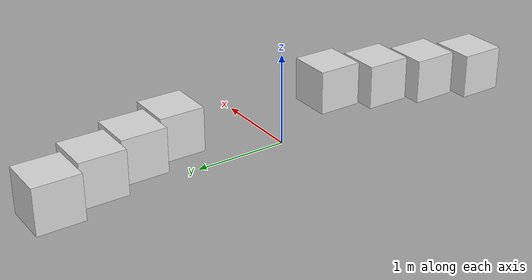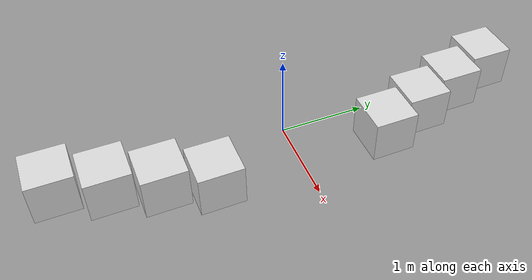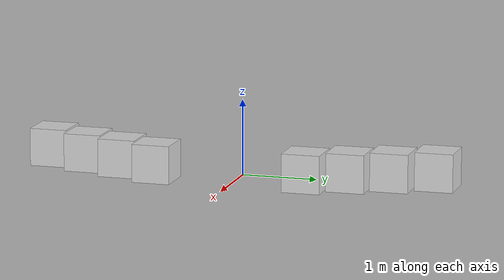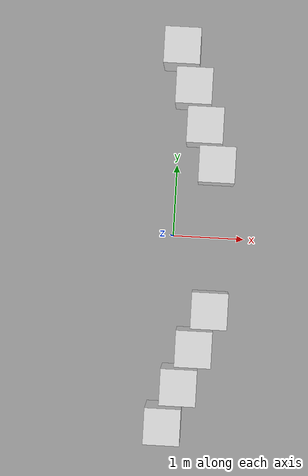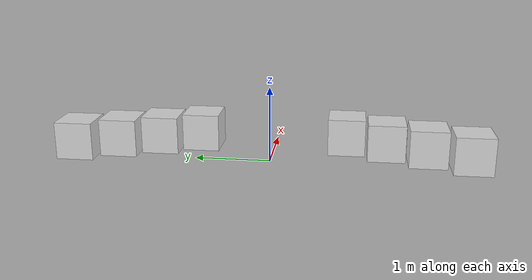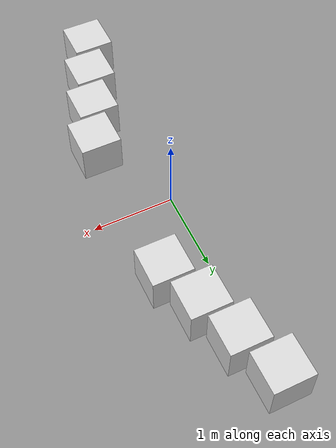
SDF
<?xml version="1.0" ?>
<sdf version="1.6">
  <model name="trap_gate">
    <static>true</static>

    <include>
      <name>normal_cue_0</name>
      <uri>model://vis_cue_normal</uri>
      <pose>0 -2.6 0.25 0 0 0</pose>
    </include>
    <include>
      <name>normal_cue_1</name>
      <uri>model://vis_cue_normal</uri>
      <pose>0.19 -2.06 0.25 0 0 0</pose>
    </include>
    <include>
      <name>normal_cue_2</name>
      <uri>model://vis_cue_normal</uri>
      <pose>0.37 -1.53 0.25 0 0 0</pose>
    </include>
    <include>
      <name>normal_cue_3</name>
      <uri>model://vis_cue_normal</uri>
      <pose>0.56 -1 0.25 0 0 0</pose>
    </include>
    <include>
      <name>normal_cue_4</name>
      <uri>model://vis_cue_normal</uri>
      <pose>0.56 1 0.25 0 0 0</pose>
    </include>
    <include>
      <name>normal_cue_5</name>
      <uri>model://vis_cue_normal</uri>
      <pose>0.37 1.53 0.25 0 0 0</pose>
    </include>
    <include>
      <name>normal_cue_6</name>
      <uri>model://vis_cue_normal</uri>
      <pose>0.19 2.06 0.25 0 0 0</pose>
    </include>
    <include>
      <name>normal_cue_7</name>
      <uri>model://vis_cue_normal</uri>
      <pose>0 2.6 0.25 0 0 0</pose>
    </include>

  </model>
</sdf>

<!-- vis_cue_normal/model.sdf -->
<sdf version="1.6">
  <model name="vis_cue_normal">
    <static>false</static>
    <pose>0 0 0.25 0 0 0</pose>
    <link name='vis_cue_normal'>
      <inertial>
        <mass>1</mass>
        <inertia>
          <ixx>0.166667</ixx>
          <ixy>0</ixy>
          <ixz>0</ixz>
          <iyy>0.166667</iyy>
          <iyz>0</iyz>
          <izz>0.166667</izz>
        </inertia>
      </inertial>
      <collision name='collision'>
        <geometry>
          <box>
            <size>0.5 0.5 0.5</size>
          </box>
        </geometry>
        <max_contacts>10</max_contacts>
        <surface>
          <contact>
            <ode/>
          </contact>
          <bounce/>
          <friction>
            <torsional>
              <ode/>
            </torsional>
            <ode/>
          </friction>
        </surface>
      </collision>
      <visual name='box_visual'>
        <geometry>
          <box>
            <size>0.5 0.5 0.5</size>
          </box>
        </geometry>
        <material>
          <ambient>0.85 0.85 0.85 1</ambient>
          <diffuse>0.85 0.85 0.85 1</diffuse>
          <specular>0.15 0.15 0.15 1</specular>
          <emissive>0 0 0 0</emissive>
        </material>
      </visual>
      <self_collide>0</self_collide>
      <kinematic>0</kinematic>
    </link>
  </model>
</sdf>
